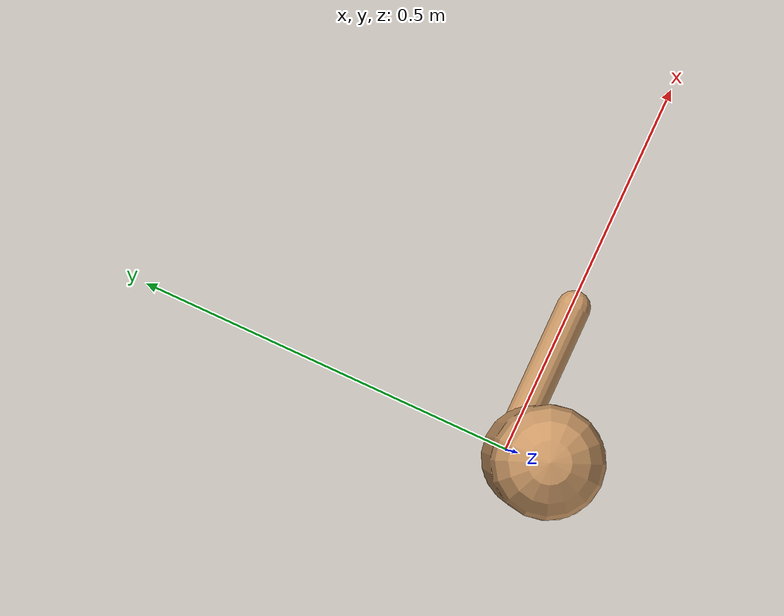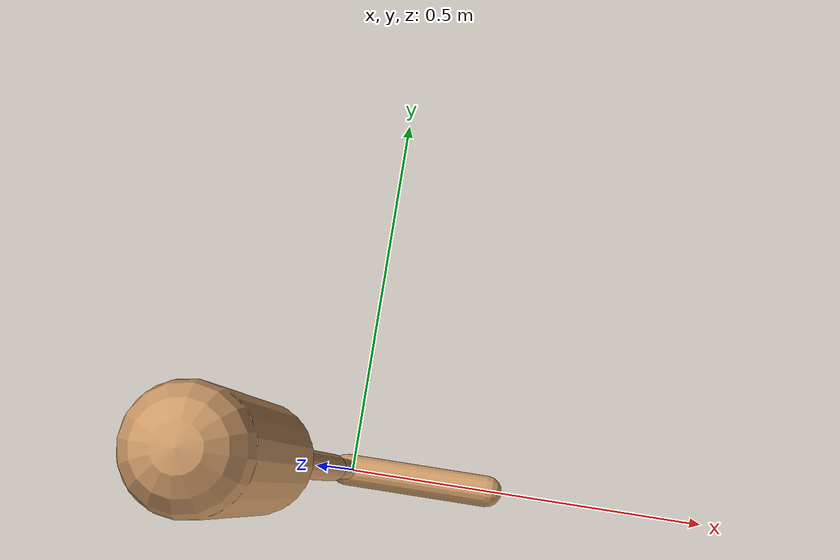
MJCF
<mujoco model="walker2d">
  <compiler angle="degree" coordinate="global" inertiafromgeom="true" />
  <default>
    <joint armature="0.01" damping=".1" limited="true" />
    <geom conaffinity="0" condim="3" contype="1" density="1000" friction="0.8 .1 .1" rgba="0.8 0.6 .4 1" />
  </default>
  <option integrator="RK4" timestep="0.002" />
  <worldbody>

    <body name="torso" pos="0 0 0.6295029400180003">
      <joint armature="0" axis="1 0 0" damping="0" limited="false" name="ignorex" pos="0 0 0" stiffness="0" type="slide" />
      <joint armature="0" axis="0 0 1" damping="0" limited="false" name="ignorez" pos="0 0 0" ref="1.25" stiffness="0" type="slide" />
      <joint armature="0" axis="0 1 0" damping="0" limited="false" name="ignorey" pos="0 0 0" stiffness="0" type="hinge" />
      <geom fromto="0 0 1.45 0 0 1.05" name="torso_geom" size="0.05389898615572911" type="capsule" />
      <body name="thigh">
        <joint axis="0 -1 0" name="thigh_joint" pos="0 0 1.05" range="-150 0" type="hinge" />
        <geom fromto="0.0 0.0 1.05 0.0 0.0 0.30181439683357875" name="thigh_geom" size="0.01725010050734337" type="capsule" />
        <body name="leg" pos="0.0 0.0 -0.29818560316642123">
          <joint axis="0 -1 0" name="leg_joint" pos="0 0 0.6" range="-150 0" type="hinge" />
          <geom fromto="0.0 0.0 0.6 0.0 0.0 -0.2313173368515791" name="leg_geom" size="0.013800080405874696" type="capsule" />
          <body name="foot" pos="0.0 0.0 -0.3313173368515791">
            <joint axis="0 -1 0" name="foot_joint" pos="0 0 0.1" range="-45 45" type="hinge" />
            <geom fromto="0.0 0.0 0.1 0.19457627998252203 0.0 0.1" name="foot_geom" size="0.02131821871592596" type="capsule" />
          </body>
        </body>
      </body>

      <body name="thigh_left">
        <joint axis="0 -1 0" name="thigh_left_joint" pos="0 0 1.05" range="-150 0" type="hinge" />
        <geom fromto="0.0 0.0 1.05 0.0 0.0 0.30181439683357875" name="thigh_left_geom" rgba=".7 .3 .6 1" size="0.01725010050734337" type="capsule" />
        <body name="leg_left" pos="0.0 0.0 -0.29818560316642123">
          <joint axis="0 -1 0" name="leg_left_joint" pos="0 0 0.6" range="-150 0" type="hinge" />
          <geom fromto="0.0 0.0 0.6 0.0 0.0 -0.2313173368515791" name="leg_left_geom" rgba=".7 .3 .6 1" size="0.013800080405874696" type="capsule" />
          <body name="foot_left" pos="0.0 0.0 -0.3313173368515791">
            <joint axis="0 -1 0" name="foot_left_joint" pos="0 0 0.1" range="-45 45" type="hinge" />
            <geom fromto="0.0 0.0 0.1 0.19457627998252203 0.0 0.1" name="foot_left_geom" rgba=".7 .3 .6 1" size="0.02131821871592596" type="capsule" />
          </body>
        </body>
      </body>
    </body>
  </worldbody>
  <actuator>

    <motor ctrllimited="true" ctrlrange="-1.0 1.0" gear="100" joint="thigh_joint" />
    <motor ctrllimited="true" ctrlrange="-1.0 1.0" gear="100" joint="leg_joint" />
    <motor ctrllimited="true" ctrlrange="-1.0 1.0" gear="100" joint="foot_joint" />
    <motor ctrllimited="true" ctrlrange="-1.0 1.0" gear="100" joint="thigh_left_joint" />
    <motor ctrllimited="true" ctrlrange="-1.0 1.0" gear="100" joint="leg_left_joint" />
    <motor ctrllimited="true" ctrlrange="-1.0 1.0" gear="100" joint="foot_left_joint" />

  </actuator>
</mujoco>
